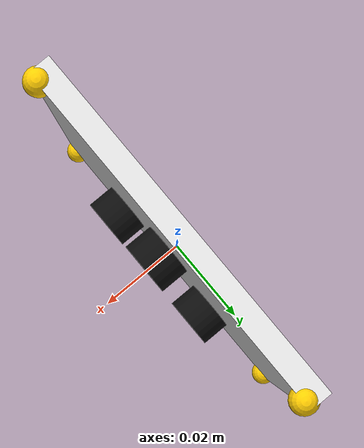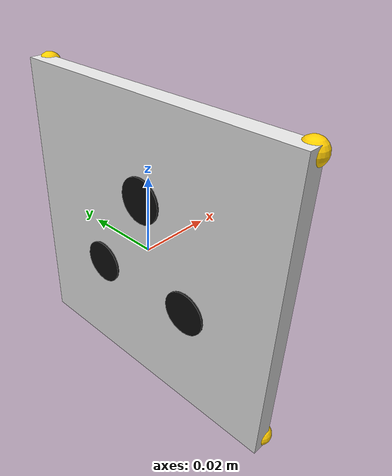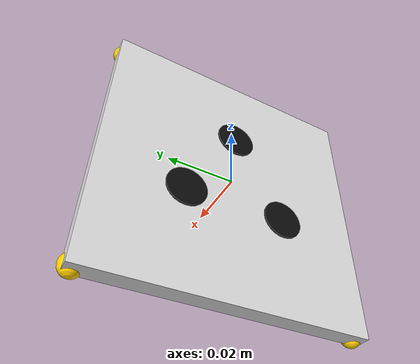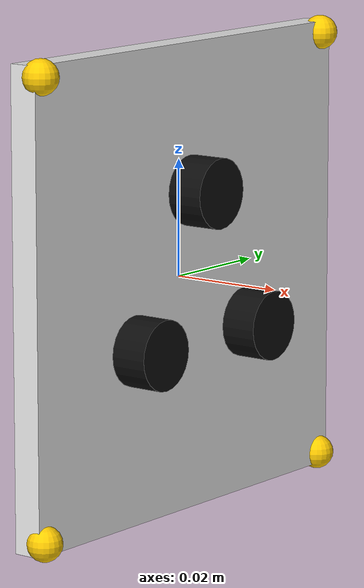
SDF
<?xml version="1.0" ?>
<sdf version="1.8">
  <model name="connector_socket">
    <static>true</static>

    <link name="link">

      <!-- ── Fehér műanyag keret ─────────────────────────────── -->
      <visual name="frame_visual">
        <geometry>
          <box><size>0.005 0.08 0.08</size></box>
        </geometry>
        <material>
          <ambient>0.9 0.9 0.9 1</ambient>
          <diffuse>0.9 0.9 0.9 1</diffuse>
          <specular>0.1 0.1 0.1 1</specular>
        </material>
      </visual>

      <!-- ── Lyuk 1: felső-középső (sötétszürke henger) ─────── -->
      <visual name="hole_top">
        <pose>0.003 0.0 0.015 0 1.5708 0</pose>
        <geometry>
          <cylinder>
            <radius>0.006</radius>
            <length>0.012</length>
          </cylinder>
        </geometry>
        <material>
          <ambient>0.05 0.05 0.05 1</ambient>
          <diffuse>0.05 0.05 0.05 1</diffuse>
        </material>
      </visual>

      <!-- ── Lyuk 2: bal-alsó ────────────────────────────────── -->
      <visual name="hole_left">
        <pose>0.003 -0.015 -0.01 0 1.5708 0</pose>
        <geometry>
          <cylinder>
            <radius>0.006</radius>
            <length>0.012</length>
          </cylinder>
        </geometry>
        <material>
          <ambient>0.05 0.05 0.05 1</ambient>
          <diffuse>0.05 0.05 0.05 1</diffuse>
        </material>
      </visual>

      <!-- ── Lyuk 3: jobb-alsó ───────────────────────────────── -->
      <visual name="hole_right">
        <pose>0.003 0.015 -0.01 0 1.5708 0</pose>
        <geometry>
          <cylinder>
            <radius>0.006</radius>
            <length>0.012</length>
          </cylinder>
        </geometry>
        <material>
          <ambient>0.05 0.05 0.05 1</ambient>
          <diffuse>0.05 0.05 0.05 1</diffuse>
        </material>
      </visual>

      <!-- ── Sarokjelölők (sárga pontok, kalibrációhoz) ─────── -->
      <!-- bal-felső sarok -->
      <visual name="corner_tl">
        <pose>0.002 -0.038 0.038 0 0 0</pose>
        <geometry>
          <sphere><radius>0.003</radius></sphere>
        </geometry>
        <material>
          <ambient>1.0 0.8 0.0 1</ambient>
          <diffuse>1.0 0.8 0.0 1</diffuse>
        </material>
      </visual>

      <!-- jobb-felső sarok -->
      <visual name="corner_tr">
        <pose>0.002 0.038 0.038 0 0 0</pose>
        <geometry>
          <sphere><radius>0.003</radius></sphere>
        </geometry>
        <material>
          <ambient>1.0 0.8 0.0 1</ambient>
          <diffuse>1.0 0.8 0.0 1</diffuse>
        </material>
      </visual>

      <!-- jobb-alsó sarok -->
      <visual name="corner_br">
        <pose>0.002 0.038 -0.038 0 0 0</pose>
        <geometry>
          <sphere><radius>0.003</radius></sphere>
        </geometry>
        <material>
          <ambient>1.0 0.8 0.0 1</ambient>
          <diffuse>1.0 0.8 0.0 1</diffuse>
        </material>
      </visual>

      <!-- bal-alsó sarok -->
      <visual name="corner_bl">
        <pose>0.002 -0.038 -0.038 0 0 0</pose>
        <geometry>
          <sphere><radius>0.003</radius></sphere>
        </geometry>
        <material>
          <ambient>1.0 0.8 0.0 1</ambient>
          <diffuse>1.0 0.8 0.0 1</diffuse>
        </material>
      </visual>

      <!-- ── Ütközési geometria ──────────────────────────────── -->
      <collision name="collision">
        <geometry>
          <box><size>0.01 0.08 0.08</size></box>
        </geometry>
      </collision>

    </link>
  </model>
</sdf>
